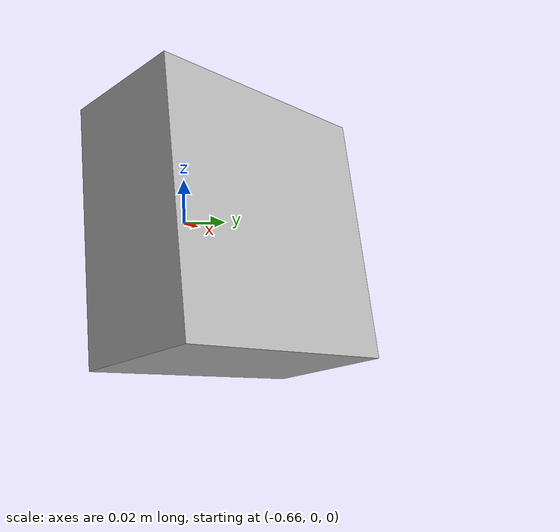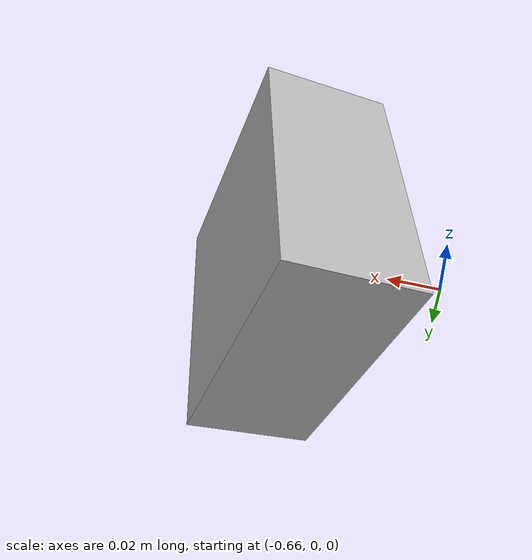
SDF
<?xml version="1.0" ?>
<sdf version="1.7">
  <model name="box skeleton">
    <link name="box">
      <pose>-0.6 0 0 1 2 3</pose>
      <inertial>
        <pose>0 0 0 0 0 0</pose>
        <mass>1</mass>
      </inertial>
      <visual name="visual 1">
        <geometry>
          <box>
            <size>0.1 0.05 0.1</size>
          </box>
        </geometry>
      </visual>
      <collision name="collision 1">
        <geometry>
          <box>
            <size>0.1 0.05 0.1</size>
          </box>
        </geometry>
      </collision>
    </link>
  </model>
</sdf>
